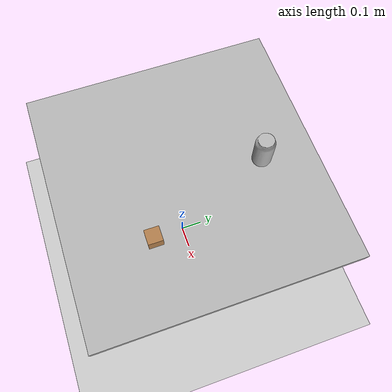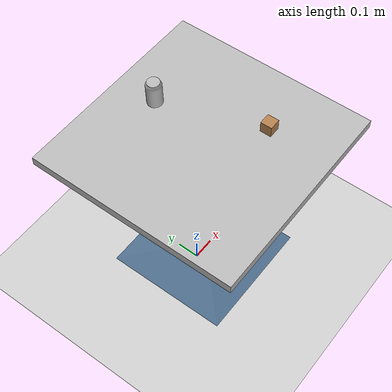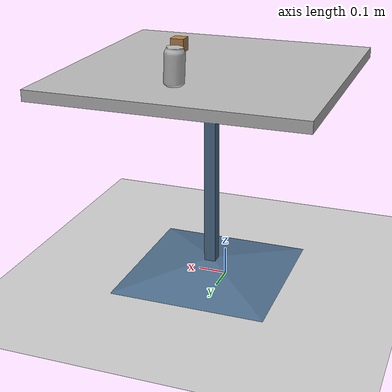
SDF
<sdf version="1.6">
 <world name="default">
  <light name="sun" type="directional">
   <pose>0 0 10 0 -0 0</pose>
   <diffuse>0.8 0.8 0.8 1</diffuse>
   <specular>0.2 0.2 0.2 1</specular>
   <attenuation>
    <range>1000</range>
    <constant>0.9</constant>
    <linear>0.01</linear>
    <quadratic>0.001</quadratic>
   </attenuation>
   <direction>-0.5 0.1 -0.9</direction>
  </light>
  <model name="ground_plane">
   <static>1</static>
   <link name="link">
    <collision name="collision">
     <geometry><plane><normal>0 0 1</normal><size>100 100</size></plane></geometry>
     <surface>
      <contact><collide_bitmask>65535</collide_bitmask></contact>
      <friction><ode><mu>100</mu><mu2>50</mu2></ode></friction>
     </surface>
    </collision>
    <visual name="visual">
     <cast_shadows>0</cast_shadows>
     <geometry><plane><normal>0 0 1</normal><size>100 100</size></plane></geometry>
     <material>
      <script><uri>file://media/materials/scripts/gazebo.material</uri><name>Gazebo/Grey</name></script>
     </material>
    </visual>
   </link>
  </model>
  <gravity>0 0 -9.8</gravity>
  <magnetic_field>6e-06 2.3e-05 -4.2e-05</magnetic_field>
  <atmosphere type="adiabatic"/>
  <physics name="default_physics" default="0" type="ode">
   <max_step_size>0.001</max_step_size>
   <real_time_factor>1</real_time_factor>
   <real_time_update_rate>1000</real_time_update_rate>
  </physics>
  <scene><ambient>0.4 0.4 0.4 1</ambient><background>0.7 0.7 0.7 1</background><shadows>1</shadows></scene>
  <audio><device>default</device></audio>
  <spherical_coordinates>
   <surface_model>EARTH_WGS84</surface_model>
   <latitude_deg>0</latitude_deg>
   <longitude_deg>0</longitude_deg>
   <elevation>0</elevation>
   <heading_deg>0</heading_deg>
  </spherical_coordinates>
  <model name="cafe_table">
   <static>1</static>
   <link name="link">
    <collision name="surface">
     <pose>0 0 0.755 0 -0 0</pose>
     <geometry><box><size>0.913 0.913 0.04</size></box></geometry>
    </collision>
    <collision name="column">
     <pose>0 0 0.37 0 -0 0</pose>
     <geometry><box><size>0.042 0.042 0.74</size></box></geometry>
    </collision>
    <collision name="base">
     <pose>0 0 0.02 0 -0 0</pose>
     <geometry><box><size>0.56 0.56 0.04</size></box></geometry>
    </collision>
    <visual name="visual">
     <geometry><mesh><uri>model://cafe_table/meshes/cafe_table.dae</uri></mesh></geometry>
    </visual>
   </link>
   <pose>0.053561 0.000673 0 0 -0 0</pose>
  </model>
  <model name="coke_can">
   <link name="link">
    <inertial>
     <pose>0 0 0.06 0 -0 0</pose>
     <mass>0.39</mass>
     <inertia>
      <ixx>0.00055575</ixx>
      <ixy>0</ixy>
      <ixz>0</ixz>
      <iyy>0.00055575</iyy>
      <iyz>0</iyz>
      <izz>0.0001755</izz>
     </inertia>
    </inertial>
    <collision name="collision">
     <pose>0.003937 0.004724 -0.18 0 -0 0</pose>
     <geometry><mesh><uri>model://coke_can/meshes/coke_can.dae</uri></mesh></geometry>
     <surface>
      <friction><ode><mu>1</mu><mu2>1</mu2></ode></friction>
      <contact><ode><kp>1e+07</kp><kd>1</kd><min_depth>0.001</min_depth><max_vel>0.1</max_vel></ode></contact>
     </surface>
    </collision>
    <visual name="visual">
     <pose>0.003937 0.004724 -0.18 0 -0 0</pose>
     <geometry><mesh><uri>model://coke_can/meshes/coke_can.dae</uri></mesh></geometry>
    </visual>
   </link>
   <pose>0.085036 0.263745 0.77186 0.011223 -0.044455 -0.001106</pose>
  </model>
  <model name="wood_cube_5cm">
   <link name="link">
    <pose>0 0 0.025 0 -0 0</pose>
    <inertial>
     <mass>0.0565</mass>
     <inertia>
      <ixx>2.35417e-05</ixx>
      <ixy>0</ixy>
      <ixz>0</ixz>
      <iyy>2.35417e-05</iyy>
      <iyz>0</iyz>
      <izz>2.35417e-05</izz>
     </inertia>
    </inertial>
    <collision name="collision">
     <geometry><box><size>0.05 0.05 0.05</size></box></geometry>
     <surface>
      <contact>
       <poissons_ratio>0.347</poissons_ratio>
       <elastic_modulus>8.8e+09</elastic_modulus>
       <ode><kp>100000</kp><kd>1</kd><max_vel>1</max_vel><min_depth>0.001</min_depth></ode>
      </contact>
      <friction>
       <torsional>
        <coefficient>1</coefficient>
        <use_patch_radius>0</use_patch_radius>
        <surface_radius>0.05</surface_radius>
       </torsional>
      </friction>
     </surface>
    </collision>
    <visual name="visual">
     <geometry><box><size>0.05 0.05 0.05</size></box></geometry>
     <material>
      <script><uri>file://media/materials/scripts/gazebo.material</uri><name>Gazebo/Wood</name></script>
     </material>
    </visual>
   </link>
   <pose>0.238348 -0.169125 0.774015 0 -0 0</pose>
  </model>
 </world>
</sdf>
